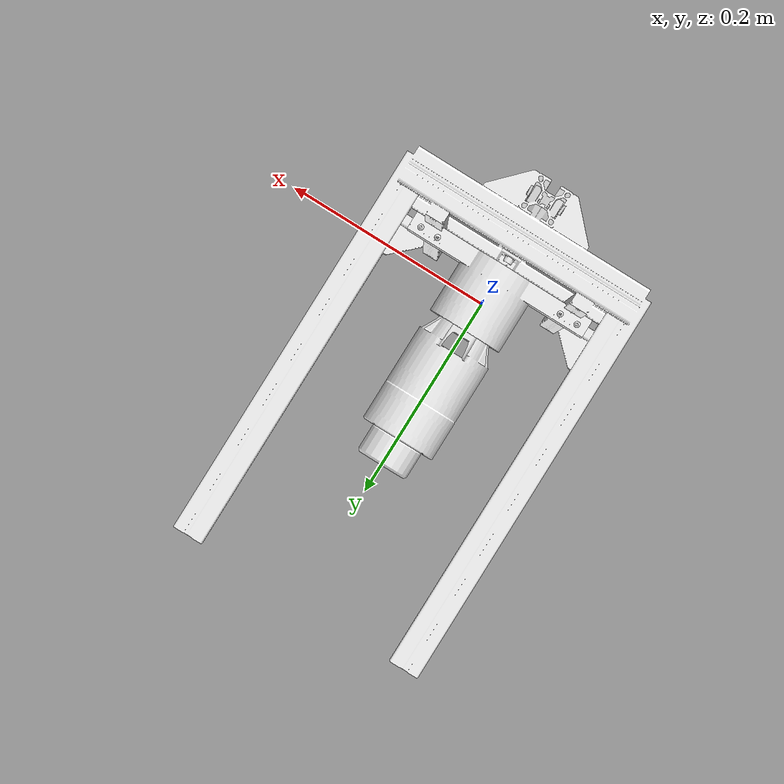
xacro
<?xml version="1.0"?>
<robot name="tsdt" xmlns:xacro="http://ros.org/wiki/xacro">

  <material name="white">
    <color rgba="1.0 1.0 1.0 1.0"/>
  </material>

  <link name="world"/>
  <joint name="fixed" type="fixed">
    <parent link="world"/>
    <child link="stand"/>
  </joint>

  <link name="stand">
    <visual>
      <geometry>
        <mesh filename="package://tsdt_description/meshes/stand.STL" />
      </geometry>
      <origin xyz="0 0 0" rpy="0 0 0"/>
      <material name="white"/>
    </visual>
    <collision>
      <geometry>
        <mesh filename="package://tsdt_description/meshes/stand.STL" />
      </geometry>
      <origin xyz="0 0 0" rpy="0 0 0"/>
    </collision>
    <inertial>
      <mass value="5.0"/>
      <origin xyz="0 0 0 " rpy="0 0 0"/>
      <inertia ixx="0" ixy="0" ixz="0" iyy="0" iyz="0" izz="0"/>
    </inertial>
  </link>

  <joint name="joint0" type="fixed">
    <origin xyz="0 0 0.82" rpy="0 0 0"/>
    <parent link="stand"/>
    <child link="leg1"/>
  </joint>

  <link name="leg1">
    <visual>
      <geometry>
        <mesh filename="package://tsdt_description/meshes/leg1.STL" />
      </geometry>
      <origin xyz="0 0 -0.82" rpy="0 0 0"/>
      <material name="white"/>
    </visual>
    <collision>
      <geometry>
        <mesh filename="package://tsdt_description/meshes/leg1.STL" />
      </geometry>
      <origin xyz="0 0 -0.82" rpy="0 0 0"/>
    </collision>
    <inertial>
      <mass value="5.0"/>
      <origin xyz="0 0 0 " rpy="0 0 0"/>
      <inertia ixx="0" ixy="0" ixz="0" iyy="0" iyz="0" izz="0"/>
    </inertial>
  </link>

  <joint name="joint1" type="continuous">
    <origin xyz="0 0.043 0" rpy="0 0 0"/>
    <axis xyz="0 1 0"/>
    <parent link="leg1"/>
    <child link="leg2"/>
  </joint>

  <link name="leg2">
    <visual>
      <geometry>
        <mesh filename="package://tsdt_description/meshes/leg2.STL" />
      </geometry>
      <origin xyz="0 -0.043 -0.82" rpy="0 0 0"/>
      <material name="white"/>
    </visual>
    <collision>
      <geometry>
        <mesh filename="package://tsdt_description/meshes/leg2.STL" />
      </geometry>
      <origin xyz="0 -0.043 -0.82" rpy="0 0 0"/>
    </collision>
    <inertial>
      <mass value="5.0"/>
      <origin xyz="0 0 0 " rpy="0 0 0"/>
      <inertia ixx="0" ixy="0" ixz="0" iyy="0" iyz="0" izz="0"/>
    </inertial>
  </link>

  <joint name="joint2" type="continuous">
    <origin xyz="0 0.097 -0.16" rpy="0 0 0"/>
    <axis xyz="0 1 0"/>
    <parent link="leg2"/>
    <child link="leg3"/>
  </joint>

  <link name="leg3">
    <visual>
      <geometry>
        <mesh filename="package://tsdt_description/meshes/leg3.STL" />
      </geometry>
      <origin xyz="0 -0.14 -0.66" rpy="0 0 0"/>
      <material name="white"/>
    </visual>
    <collision>
      <geometry>
        <mesh filename="package://tsdt_description/meshes/leg2.STL" />
      </geometry>
      <origin xyz="0 -0.14 -0.66" rpy="0 0 0"/>
    </collision>
    <inertial>
      <mass value="5.0"/>
      <origin xyz="0 0 0 " rpy="0 0 0"/>
      <inertia ixx="0" ixy="0" ixz="0" iyy="0" iyz="0" izz="0"/>
    </inertial>
  </link>

  <joint name="joint3" type="fixed">
    <origin xyz="0 0 -0.16" rpy="0 0 0"/>
    <parent link="leg3"/>
    <child link="leg4"/>
  </joint>

  <link name="leg4"/>

</robot>
